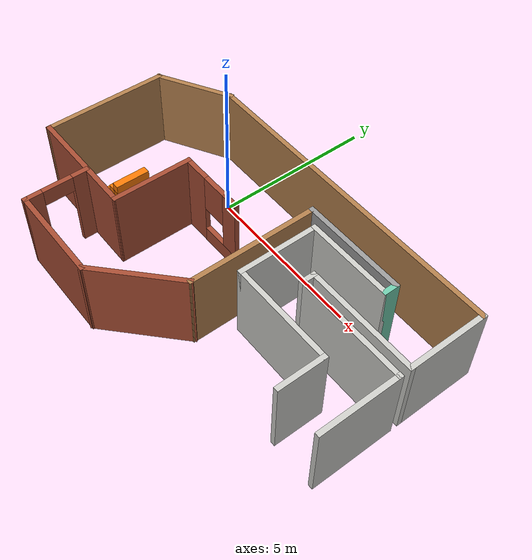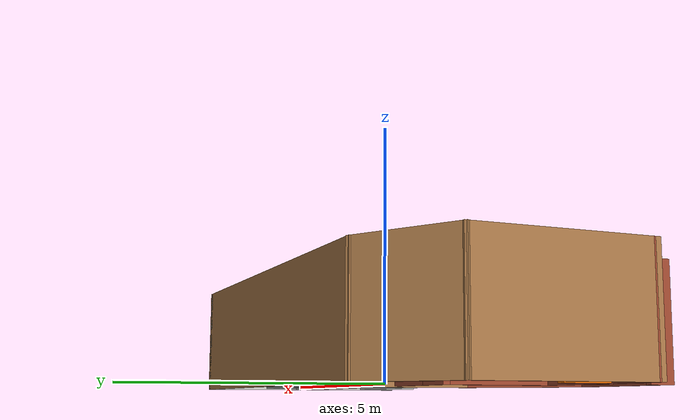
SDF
<?xml version='1.0'?>
<sdf version='1.6'>
  <model name='myBuilding'>
    <pose frame=''>2.2613 -2.01674 0 0 -0 0</pose>
    <link name='Stairs_3'>
      <visual name='Stairs_3_Visual_0'>
        <pose frame=''>-4.79161 -0.730782 0.125 0 -0 1.5708</pose>
        <geometry>
          <box>
            <size>1 0.212 0.25</size>
          </box>
        </geometry>
        <material>
          <script>
            <uri>file://media/materials/scripts/gazebo.material</uri>
            <name>Gazebo/Grey</name>
          </script>
          <ambient>0.996078 0.47451 0.0196078 1</ambient>
        </material>
        <meta>
          <layer>0</layer>
        </meta>
      </visual>
      <collision name='Stairs_3_Collision_0'>
        <geometry>
          <box>
            <size>1 0.212 0.25</size>
          </box>
        </geometry>
        <pose frame=''>-4.79161 -0.730782 0.125 0 -0 1.5708</pose>
      </collision>
      <visual name='Stairs_3_Visual_1'>
        <pose frame=''>-4.57961 -0.730782 0.375 0 -0 1.5708</pose>
        <geometry>
          <box>
            <size>1 0.212 0.25</size>
          </box>
        </geometry>
        <material>
          <script>
            <uri>file://media/materials/scripts/gazebo.material</uri>
            <name>Gazebo/Grey</name>
          </script>
          <ambient>0.996078 0.47451 0.0196078 1</ambient>
        </material>
        <meta>
          <layer>0</layer>
        </meta>
      </visual>
      <collision name='Stairs_3_Collision_1'>
        <geometry>
          <box>
            <size>1 0.212 0.25</size>
          </box>
        </geometry>
        <pose frame=''>-4.57961 -0.730782 0.375 0 -0 1.5708</pose>
      </collision>
      <visual name='Stairs_3_Visual_2'>
        <pose frame=''>-4.36761 -0.730782 0.625 0 -0 1.5708</pose>
        <geometry>
          <box>
            <size>1 0.212 0.25</size>
          </box>
        </geometry>
        <material>
          <script>
            <uri>file://media/materials/scripts/gazebo.material</uri>
            <name>Gazebo/Grey</name>
          </script>
          <ambient>0.996078 0.47451 0.0196078 1</ambient>
        </material>
        <meta>
          <layer>0</layer>
        </meta>
      </visual>
      <collision name='Stairs_3_Collision_2'>
        <geometry>
          <box>
            <size>1 0.212 0.25</size>
          </box>
        </geometry>
        <pose frame=''>-4.36761 -0.730782 0.625 0 -0 1.5708</pose>
      </collision>
      <visual name='Stairs_3_Visual_3'>
        <pose frame=''>-4.15561 -0.730782 0.875 0 -0 1.5708</pose>
        <geometry>
          <box>
            <size>1 0.212 0.25</size>
          </box>
        </geometry>
        <material>
          <script>
            <uri>file://media/materials/scripts/gazebo.material</uri>
            <name>Gazebo/Grey</name>
          </script>
          <ambient>0.996078 0.47451 0.0196078 1</ambient>
        </material>
        <meta>
          <layer>0</layer>
        </meta>
      </visual>
      <collision name='Stairs_3_Collision_3'>
        <geometry>
          <box>
            <size>1 0.212 0.25</size>
          </box>
        </geometry>
        <pose frame=''>-4.15561 -0.730782 0.875 0 -0 1.5708</pose>
      </collision>
      <visual name='Stairs_3_Visual_4'>
        <pose frame=''>-3.94361 -0.730782 1.125 0 -0 1.5708</pose>
        <geometry>
          <box>
            <size>1 0.212 0.25</size>
          </box>
        </geometry>
        <material>
          <script>
            <uri>file://media/materials/scripts/gazebo.material</uri>
            <name>Gazebo/Grey</name>
          </script>
          <ambient>0.996078 0.47451 0.0196078 1</ambient>
        </material>
        <meta>
          <layer>0</layer>
        </meta>
      </visual>
      <collision name='Stairs_3_Collision_4'>
        <geometry>
          <box>
            <size>1 0.212 0.25</size>
          </box>
        </geometry>
        <pose frame=''>-3.94361 -0.730782 1.125 0 -0 1.5708</pose>
      </collision>
      <visual name='Stairs_3_Visual_5'>
        <pose frame=''>-3.73161 -0.730782 1.375 0 -0 1.5708</pose>
        <geometry>
          <box>
            <size>1 0.212 0.25</size>
          </box>
        </geometry>
        <material>
          <script>
            <uri>file://media/materials/scripts/gazebo.material</uri>
            <name>Gazebo/Grey</name>
          </script>
          <ambient>0.996078 0.47451 0.0196078 1</ambient>
        </material>
        <meta>
          <layer>0</layer>
        </meta>
      </visual>
      <collision name='Stairs_3_Collision_5'>
        <geometry>
          <box>
            <size>1 0.212 0.25</size>
          </box>
        </geometry>
        <pose frame=''>-3.73161 -0.730782 1.375 0 -0 1.5708</pose>
      </collision>
      <visual name='Stairs_3_Visual_6'>
        <pose frame=''>-3.51961 -0.730782 1.625 0 -0 1.5708</pose>
        <geometry>
          <box>
            <size>1 0.212 0.25</size>
          </box>
        </geometry>
        <material>
          <script>
            <uri>file://media/materials/scripts/gazebo.material</uri>
            <name>Gazebo/Grey</name>
          </script>
          <ambient>0.996078 0.47451 0.0196078 1</ambient>
        </material>
        <meta>
          <layer>0</layer>
        </meta>
      </visual>
      <collision name='Stairs_3_Collision_6'>
        <geometry>
          <box>
            <size>1 0.212 0.25</size>
          </box>
        </geometry>
        <pose frame=''>-3.51961 -0.730782 1.625 0 -0 1.5708</pose>
      </collision>
      <visual name='Stairs_3_Visual_7'>
        <pose frame=''>-3.30761 -0.730782 1.875 0 -0 1.5708</pose>
        <geometry>
          <box>
            <size>1 0.212 0.25</size>
          </box>
        </geometry>
        <material>
          <script>
            <uri>file://media/materials/scripts/gazebo.material</uri>
            <name>Gazebo/Grey</name>
          </script>
          <ambient>0.996078 0.47451 0.0196078 1</ambient>
        </material>
        <meta>
          <layer>0</layer>
        </meta>
      </visual>
      <collision name='Stairs_3_Collision_7'>
        <geometry>
          <box>
            <size>1 0.212 0.25</size>
          </box>
        </geometry>
        <pose frame=''>-3.30761 -0.730782 1.875 0 -0 1.5708</pose>
      </collision>
      <visual name='Stairs_3_Visual_8'>
        <pose frame=''>-3.09561 -0.730782 2.125 0 -0 1.5708</pose>
        <geometry>
          <box>
            <size>1 0.212 0.25</size>
          </box>
        </geometry>
        <material>
          <script>
            <uri>file://media/materials/scripts/gazebo.material</uri>
            <name>Gazebo/Grey</name>
          </script>
          <ambient>0.996078 0.47451 0.0196078 1</ambient>
        </material>
        <meta>
          <layer>0</layer>
        </meta>
      </visual>
      <collision name='Stairs_3_Collision_8'>
        <geometry>
          <box>
            <size>1 0.212 0.25</size>
          </box>
        </geometry>
        <pose frame=''>-3.09561 -0.730782 2.125 0 -0 1.5708</pose>
      </collision>
      <visual name='Stairs_3_Visual_9'>
        <pose frame=''>-2.88361 -0.730782 2.375 0 -0 1.5708</pose>
        <geometry>
          <box>
            <size>1 0.212 0.25</size>
          </box>
        </geometry>
        <material>
          <script>
            <uri>file://media/materials/scripts/gazebo.material</uri>
            <name>Gazebo/Grey</name>
          </script>
          <ambient>0.996078 0.47451 0.0196078 1</ambient>
        </material>
        <meta>
          <layer>0</layer>
        </meta>
      </visual>
      <collision name='Stairs_3_Collision_9'>
        <geometry>
          <box>
            <size>1 0.212 0.25</size>
          </box>
        </geometry>
        <pose frame=''>-2.88361 -0.730782 2.375 0 -0 1.5708</pose>
      </collision>
    </link>
    <link name='Wall_12'>
      <collision name='Wall_12_Collision'>
        <geometry>
          <box>
            <size>2.5 0.15 2.5</size>
          </box>
        </geometry>
        <pose frame=''>0 0 1.25 0 -0 0</pose>
      </collision>
      <visual name='Wall_12_Visual'>
        <pose frame=''>0 0 1.25 0 -0 0</pose>
        <geometry>
          <box>
            <size>2.5 0.15 2.5</size>
          </box>
        </geometry>
        <material>
          <script>
            <uri>file://media/materials/scripts/gazebo.material</uri>
            <name>Gazebo/Bricks</name>
          </script>
          <ambient>1 1 1 1</ambient>
        </material>
        <meta>
          <layer>0</layer>
        </meta>
      </visual>
      <pose frame=''>-2.49077 -0.307608 0 0 0 -1.5708</pose>
    </link>
    <link name='Wall_27'>
      <collision name='Wall_27_Collision'>
        <geometry>
          <box>
            <size>3.57052 0.15 2.5</size>
          </box>
        </geometry>
        <pose frame=''>0 0 1.25 0 -0 0</pose>
      </collision>
      <visual name='Wall_27_Visual'>
        <pose frame=''>0 0 1.25 0 -0 0</pose>
        <geometry>
          <box>
            <size>3.57052 0.15 2.5</size>
          </box>
        </geometry>
        <material>
          <script>
            <uri>file://media/materials/scripts/gazebo.material</uri>
            <name>Gazebo/Bricks</name>
          </script>
          <ambient>1 1 1 1</ambient>
        </material>
        <meta>
          <layer>0</layer>
        </meta>
      </visual>
      <pose frame=''>-4.20104 -1.48293 0 0 -0 0.00019</pose>
    </link>
    <link name='Wall_32'>
      <collision name='Wall_32_Collision'>
        <geometry>
          <box>
            <size>2.87163 0.15 2.5</size>
          </box>
        </geometry>
        <pose frame=''>0 0 1.25 0 -0 0</pose>
      </collision>
      <visual name='Wall_32_Visual'>
        <pose frame=''>0 0 1.25 0 -0 0</pose>
        <geometry>
          <box>
            <size>2.87163 0.15 2.5</size>
          </box>
        </geometry>
        <material>
          <script>
            <uri>file://media/materials/scripts/gazebo.material</uri>
            <name>Gazebo/Bricks</name>
          </script>
          <ambient>1 1 1 1</ambient>
        </material>
        <meta>
          <layer>0</layer>
        </meta>
      </visual>
      <pose frame=''>-0.045348 -2.42318 0 0 -0 0.762468</pose>
    </link>
    <link name='Wall_37'>
      <collision name='Wall_37_Collision'>
        <geometry>
          <box>
            <size>2.45705 0.15 2.5</size>
          </box>
        </geometry>
        <pose frame=''>0 0 1.25 0 -0 0</pose>
      </collision>
      <visual name='Wall_37_Visual'>
        <pose frame=''>0 0 1.25 0 -0 0</pose>
        <geometry>
          <box>
            <size>2.45705 0.15 2.5</size>
          </box>
        </geometry>
        <material>
          <script>
            <uri>file://media/materials/scripts/gazebo.material</uri>
            <name>Gazebo/Wood</name>
          </script>
          <ambient>1 1 1 1</ambient>
        </material>
        <meta>
          <layer>0</layer>
        </meta>
      </visual>
      <pose frame=''>-4.9113 2.79174 0 0 0 -2.61976</pose>
    </link>
    <link name='Wall_39'>
      <pose frame=''>-1.44077 0.867393 0 0 -0 0</pose>
      <visual name='Wall_39_Visual_0'>
        <pose frame=''>-0.672762 0 1.25 0 -0 0</pose>
        <geometry>
          <box>
            <size>0.904475 0.15 2.5</size>
          </box>
        </geometry>
        <material>
          <script>
            <uri>file://media/materials/scripts/gazebo.material</uri>
            <name>Gazebo/Bricks</name>
          </script>
          <ambient>1 1 1 1</ambient>
        </material>
        <meta>
          <layer>0</layer>
        </meta>
      </visual>
      <collision name='Wall_39_Collision_0'>
        <geometry>
          <box>
            <size>0.904475 0.15 2.5</size>
          </box>
        </geometry>
        <pose frame=''>-0.672762 0 1.25 0 -0 0</pose>
      </collision>
      <visual name='Wall_39_Visual_1'>
        <pose frame=''>0.452238 0 0.25 0 -0 0</pose>
        <geometry>
          <box>
            <size>1.34553 0.15 0.5</size>
          </box>
        </geometry>
        <material>
          <script>
            <uri>file://media/materials/scripts/gazebo.material</uri>
            <name>Gazebo/Bricks</name>
          </script>
          <ambient>1 1 1 1</ambient>
        </material>
        <meta>
          <layer>0</layer>
        </meta>
      </visual>
      <collision name='Wall_39_Collision_1'>
        <geometry>
          <box>
            <size>1.34553 0.15 0.5</size>
          </box>
        </geometry>
        <pose frame=''>0.452238 0 0.25 0 -0 0</pose>
      </collision>
      <visual name='Wall_39_Visual_2'>
        <pose frame=''>0.852238 0 1.5 0 -0 0</pose>
        <geometry>
          <box>
            <size>0.545525 0.15 2</size>
          </box>
        </geometry>
        <material>
          <script>
            <uri>file://media/materials/scripts/gazebo.material</uri>
            <name>Gazebo/Bricks</name>
          </script>
          <ambient>1 1 1 1</ambient>
        </material>
        <meta>
          <layer>0</layer>
        </meta>
      </visual>
      <collision name='Wall_39_Collision_2'>
        <geometry>
          <box>
            <size>0.545525 0.15 2</size>
          </box>
        </geometry>
        <pose frame=''>0.852238 0 1.5 0 -0 0</pose>
      </collision>
      <visual name='Wall_39_Visual_3'>
        <pose frame=''>0.179475 0 1.9 0 -0 0</pose>
        <geometry>
          <box>
            <size>0.8 0.15 1.2</size>
          </box>
        </geometry>
        <material>
          <script>
            <uri>file://media/materials/scripts/gazebo.material</uri>
            <name>Gazebo/Bricks</name>
          </script>
          <ambient>1 1 1 1</ambient>
        </material>
        <meta>
          <layer>0</layer>
        </meta>
      </visual>
      <collision name='Wall_39_Collision_3'>
        <geometry>
          <box>
            <size>0.8 0.15 1.2</size>
          </box>
        </geometry>
        <pose frame=''>0.179475 0 1.9 0 -0 0</pose>
      </collision>
    </link>
    <link name='Wall_43'>
      <collision name='Wall_43_Collision'>
        <geometry>
          <box>
            <size>4 0.15 2.5</size>
          </box>
        </geometry>
        <pose frame=''>0 0 1.25 0 -0 0</pose>
      </collision>
      <visual name='Wall_43_Visual'>
        <pose frame=''>0 0 1.25 0 -0 0</pose>
        <geometry>
          <box>
            <size>4 0.15 2.5</size>
          </box>
        </geometry>
        <material>
          <script>
            <uri>file://media/materials/scripts/gazebo.material</uri>
            <name>Gazebo/Wood</name>
          </script>
          <ambient>1 1 1 1</ambient>
        </material>
        <meta>
          <layer>0</layer>
        </meta>
      </visual>
      <pose frame=''>0.938702 0.441743 0 0 -0 1.5708</pose>
    </link>
    <link name='Wall_52'>
      <collision name='Wall_52_Collision'>
        <geometry>
          <box>
            <size>3.25 0.15 2.5</size>
          </box>
        </geometry>
        <pose frame=''>0 0 1.25 0 -0 0</pose>
      </collision>
      <visual name='Wall_52_Visual'>
        <pose frame=''>0 0 1.25 0 -0 0</pose>
        <geometry>
          <box>
            <size>3.25 0.15 2.5</size>
          </box>
        </geometry>
        <material>
          <script>
            <uri>file://media/materials/scripts/gazebo.material</uri>
            <name>Gazebo/Grey</name>
          </script>
          <ambient>1 1 1 1</ambient>
        </material>
        <meta>
          <layer>0</layer>
        </meta>
      </visual>
      <pose frame=''>2.4887 2.36674 0 0 -0 0</pose>
    </link>
    <link name='Wall_53'>
      <collision name='Wall_53_Collision'>
        <geometry>
          <box>
            <size>0.5 0.15 2.5</size>
          </box>
        </geometry>
        <pose frame=''>0 0 1.25 0 -0 0</pose>
      </collision>
      <visual name='Wall_53_Visual'>
        <pose frame=''>0 0 1.25 0 -0 0</pose>
        <geometry>
          <box>
            <size>0.5 0.15 2.5</size>
          </box>
        </geometry>
        <material>
          <script>
            <uri>file://media/materials/scripts/gazebo.material</uri>
            <name>Gazebo/Grey</name>
          </script>
          <ambient>0.435294 0.796078 0.67451 1</ambient>
        </material>
        <meta>
          <layer>0</layer>
        </meta>
      </visual>
      <pose frame=''>4.0387 2.19174 0 0 0 -1.5708</pose>
    </link>
    <link name='Wall_54'>
      <collision name='Wall_54_Collision'>
        <geometry>
          <box>
            <size>2.75 0.15 2.5</size>
          </box>
        </geometry>
        <pose frame=''>0 0 1.25 0 -0 0</pose>
      </collision>
      <visual name='Wall_54_Visual'>
        <pose frame=''>0 0 1.25 0 -0 0</pose>
        <geometry>
          <box>
            <size>2.75 0.15 2.5</size>
          </box>
        </geometry>
        <material>
          <script>
            <uri>file://media/materials/scripts/gazebo.material</uri>
            <name>Gazebo/CeilingTiled</name>
          </script>
          <ambient>0.435294 0.796078 0.67451 1</ambient>
        </material>
        <meta>
          <layer>0</layer>
        </meta>
      </visual>
      <pose frame=''>2.7387 2.01674 0 0 -0 3.14159</pose>
    </link>
    <link name='Wall_55'>
      <collision name='Wall_55_Collision'>
        <geometry>
          <box>
            <size>2.5 0.15 2.5</size>
          </box>
        </geometry>
        <pose frame=''>0 0 1.25 0 -0 0</pose>
      </collision>
      <visual name='Wall_55_Visual'>
        <pose frame=''>0 0 1.25 0 -0 0</pose>
        <geometry>
          <box>
            <size>2.5 0.15 2.5</size>
          </box>
        </geometry>
        <material>
          <script>
            <uri>file://media/materials/scripts/gazebo.material</uri>
            <name>Gazebo/CeilingTiled</name>
          </script>
          <ambient>0.435294 0.796078 0.67451 1</ambient>
        </material>
        <meta>
          <layer>0</layer>
        </meta>
      </visual>
      <pose frame=''>1.4387 0.841743 0 0 0 -1.5708</pose>
    </link>
    <link name='Wall_58'>
      <collision name='Wall_58_Collision'>
        <geometry>
          <box>
            <size>10 0.15 2.5</size>
          </box>
        </geometry>
        <pose frame=''>0 0 1.25 0 -0 0</pose>
      </collision>
      <visual name='Wall_58_Visual'>
        <pose frame=''>0 0 1.25 0 -0 0</pose>
        <geometry>
          <box>
            <size>10 0.15 2.5</size>
          </box>
        </geometry>
        <material>
          <script>
            <uri>file://media/materials/scripts/gazebo.material</uri>
            <name>Gazebo/Wood</name>
          </script>
          <ambient>1 1 1 1</ambient>
        </material>
        <meta>
          <layer>0</layer>
        </meta>
      </visual>
      <pose frame=''>1.0137 3.36674 0 0 -0 0</pose>
    </link>
    <link name='Wall_59'>
      <collision name='Wall_59_Collision'>
        <geometry>
          <box>
            <size>2.5 0.15 2.5</size>
          </box>
        </geometry>
        <pose frame=''>0 0 1.25 0 -0 0</pose>
      </collision>
      <visual name='Wall_59_Visual'>
        <pose frame=''>0 0 1.25 0 -0 0</pose>
        <geometry>
          <box>
            <size>2.5 0.15 2.5</size>
          </box>
        </geometry>
        <material>
          <script>
            <uri>file://media/materials/scripts/gazebo.material</uri>
            <name>Gazebo/CeilingTiled</name>
          </script>
          <ambient>0.435294 0.796078 0.67451 1</ambient>
        </material>
        <meta>
          <layer>0</layer>
        </meta>
      </visual>
      <pose frame=''>5.9387 2.19174 0 0 0 -1.5708</pose>
    </link>
    <link name='Wall_6'>
      <pose frame=''>-3.8794 -2.43811 0 0 0 -1.5708</pose>
      <visual name='Wall_6_Visual_0'>
        <pose frame=''>-0.734423 0 1.25 0 -0 0</pose>
        <geometry>
          <box>
            <size>0.531154 0.15 2.5</size>
          </box>
        </geometry>
        <material>
          <script>
            <uri>file://media/materials/scripts/gazebo.material</uri>
            <name>Gazebo/Bricks</name>
          </script>
          <ambient>1 1 1 1</ambient>
        </material>
        <meta>
          <layer>0</layer>
        </meta>
      </visual>
      <collision name='Wall_6_Collision_0'>
        <geometry>
          <box>
            <size>0.531154 0.15 2.5</size>
          </box>
        </geometry>
        <pose frame=''>-0.734423 0 1.25 0 -0 0</pose>
      </collision>
      <visual name='Wall_6_Visual_1'>
        <pose frame=''>0.715577 0 1.25 0 -0 0</pose>
        <geometry>
          <box>
            <size>0.568846 0.15 2.5</size>
          </box>
        </geometry>
        <material>
          <script>
            <uri>file://media/materials/scripts/gazebo.material</uri>
            <name>Gazebo/Bricks</name>
          </script>
          <ambient>1 1 1 1</ambient>
        </material>
        <meta>
          <layer>0</layer>
        </meta>
      </visual>
      <collision name='Wall_6_Collision_1'>
        <geometry>
          <box>
            <size>0.568846 0.15 2.5</size>
          </box>
        </geometry>
        <pose frame=''>0.715577 0 1.25 0 -0 0</pose>
      </collision>
      <visual name='Wall_6_Visual_2'>
        <pose frame=''>-0.018846 0 2.25 0 -0 0</pose>
        <geometry>
          <box>
            <size>0.9 0.15 0.5</size>
          </box>
        </geometry>
        <material>
          <script>
            <uri>file://media/materials/scripts/gazebo.material</uri>
            <name>Gazebo/Bricks</name>
          </script>
          <ambient>1 1 1 1</ambient>
        </material>
        <meta>
          <layer>0</layer>
        </meta>
      </visual>
      <collision name='Wall_6_Collision_2'>
        <geometry>
          <box>
            <size>0.9 0.15 0.5</size>
          </box>
        </geometry>
        <pose frame=''>-0.018846 0 2.25 0 -0 0</pose>
      </collision>
    </link>
    <link name='Wall_60'>
      <collision name='Wall_60_Collision'>
        <geometry>
          <box>
            <size>3.5 0.15 2.5</size>
          </box>
        </geometry>
        <pose frame=''>0 0 1.25 0 -0 0</pose>
      </collision>
      <visual name='Wall_60_Visual'>
        <pose frame=''>0 0 1.25 0 -0 0</pose>
        <geometry>
          <box>
            <size>3.5 0.15 2.5</size>
          </box>
        </geometry>
        <material>
          <script>
            <uri>file://media/materials/scripts/gazebo.material</uri>
            <name>Gazebo/CeilingTiled</name>
          </script>
          <ambient>0.435294 0.796078 0.67451 1</ambient>
        </material>
        <meta>
          <layer>0</layer>
        </meta>
      </visual>
      <pose frame=''>4.2637 1.01674 0 0 -0 3.14159</pose>
    </link>
    <link name='Wall_61'>
      <collision name='Wall_61_Collision'>
        <geometry>
          <box>
            <size>0.5 0.15 2.5</size>
          </box>
        </geometry>
        <pose frame=''>0 0 1.25 0 -0 0</pose>
      </collision>
      <visual name='Wall_61_Visual'>
        <pose frame=''>0 0 1.25 0 -0 0</pose>
        <geometry>
          <box>
            <size>0.5 0.15 2.5</size>
          </box>
        </geometry>
        <material>
          <script>
            <uri>file://media/materials/scripts/gazebo.material</uri>
            <name>Gazebo/CeilingTiled</name>
          </script>
          <ambient>0.435294 0.796078 0.67451 1</ambient>
        </material>
        <meta>
          <layer>0</layer>
        </meta>
      </visual>
      <pose frame=''>2.5887 0.841743 0 0 0 -1.5708</pose>
    </link>
    <link name='Wall_64'>
      <collision name='Wall_64_Collision'>
        <geometry>
          <box>
            <size>3.5 0.15 2.5</size>
          </box>
        </geometry>
        <pose frame=''>0 0 1.25 0 -0 0</pose>
      </collision>
      <visual name='Wall_64_Visual'>
        <pose frame=''>0 0 1.25 0 -0 0</pose>
        <geometry>
          <box>
            <size>3.5 0.15 2.5</size>
          </box>
        </geometry>
        <material>
          <script>
            <uri>file://media/materials/scripts/gazebo.material</uri>
            <name>Gazebo/CeilingTiled</name>
          </script>
          <ambient>0.435294 0.796078 0.67451 1</ambient>
        </material>
        <meta>
          <layer>0</layer>
        </meta>
      </visual>
      <pose frame=''>4.2637 0.666743 0 0 -0 0</pose>
    </link>
    <link name='Wall_66'>
      <collision name='Wall_66_Collision'>
        <geometry>
          <box>
            <size>3.25 0.15 2.5</size>
          </box>
        </geometry>
        <pose frame=''>0 0 1.25 0 -0 0</pose>
      </collision>
      <visual name='Wall_66_Visual'>
        <pose frame=''>0 0 1.25 0 -0 0</pose>
        <geometry>
          <box>
            <size>3.25 0.15 2.5</size>
          </box>
        </geometry>
        <material>
          <script>
            <uri>file://media/materials/scripts/gazebo.material</uri>
            <name>Gazebo/CeilingTiled</name>
          </script>
          <ambient>0.435294 0.796078 0.67451 1</ambient>
        </material>
        <meta>
          <layer>0</layer>
        </meta>
      </visual>
      <pose frame=''>2.9887 -0.333257 0 0 -0 0</pose>
    </link>
    <link name='Wall_67'>
      <collision name='Wall_67_Collision'>
        <geometry>
          <box>
            <size>1.5 0.15 2.5</size>
          </box>
        </geometry>
        <pose frame=''>0 0 1.25 0 -0 0</pose>
      </collision>
      <visual name='Wall_67_Visual'>
        <pose frame=''>0 0 1.25 0 -0 0</pose>
        <geometry>
          <box>
            <size>1.5 0.15 2.5</size>
          </box>
        </geometry>
        <material>
          <script>
            <uri>file://media/materials/scripts/gazebo.material</uri>
            <name>Gazebo/CeilingTiled</name>
          </script>
          <ambient>0.435294 0.796078 0.67451 1</ambient>
        </material>
        <meta>
          <layer>0</layer>
        </meta>
      </visual>
      <pose frame=''>4.5387 -1.00826 0 0 0 -1.5708</pose>
    </link>
    <link name='Wall_69'>
      <collision name='Wall_69_Collision'>
        <geometry>
          <box>
            <size>2.5 0.15 2.5</size>
          </box>
        </geometry>
        <pose frame=''>0 0 1.25 0 -0 0</pose>
      </collision>
      <visual name='Wall_69_Visual'>
        <pose frame=''>0 0 1.25 0 -0 0</pose>
        <geometry>
          <box>
            <size>2.5 0.15 2.5</size>
          </box>
        </geometry>
        <material>
          <script>
            <uri>file://media/materials/scripts/gazebo.material</uri>
            <name>Gazebo/CeilingTiled</name>
          </script>
          <ambient>0.435294 0.796078 0.67451 1</ambient>
        </material>
        <meta>
          <layer>0</layer>
        </meta>
      </visual>
      <pose frame=''>5.9387 -0.508258 0 0 0 -1.5708</pose>
    </link>
    <link name='Wall_7'>
      <collision name='Wall_7_Collision'>
        <geometry>
          <box>
            <size>3 0.15 2.5</size>
          </box>
        </geometry>
        <pose frame=''>0 0 1.25 0 -0 0</pose>
      </collision>
      <visual name='Wall_7_Visual'>
        <pose frame=''>0 0 1.25 0 -0 0</pose>
        <geometry>
          <box>
            <size>3 0.15 2.5</size>
          </box>
        </geometry>
        <material>
          <script>
            <uri>file://media/materials/scripts/gazebo.material</uri>
            <name>Gazebo/Bricks</name>
          </script>
          <ambient>1 1 1 1</ambient>
        </material>
        <meta>
          <layer>0</layer>
        </meta>
      </visual>
      <pose frame=''>-2.4544 -3.36311 0 0 -0 0</pose>
    </link>
    <link name='Wall_71'>
      <collision name='Wall_71_Collision'>
        <geometry>
          <box>
            <size>3.85 0.15 2.5</size>
          </box>
        </geometry>
        <pose frame=''>0 0 1.25 0 -0 0</pose>
      </collision>
      <visual name='Wall_71_Visual'>
        <pose frame=''>0 0 1.25 0 -0 0</pose>
        <geometry>
          <box>
            <size>3.85 0.15 2.5</size>
          </box>
        </geometry>
        <material>
          <script>
            <uri>file://media/materials/scripts/gazebo.material</uri>
            <name>Gazebo/Wood</name>
          </script>
          <ambient>1 1 1 1</ambient>
        </material>
        <meta>
          <layer>0</layer>
        </meta>
      </visual>
      <pose frame=''>-5.9113 0.366743 0 0 0 -1.5708</pose>
    </link>
    <static>1</static>
  </model>
</sdf>
